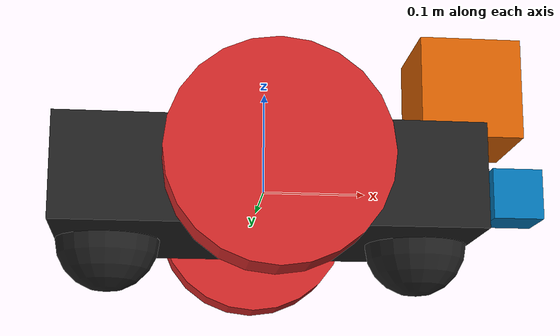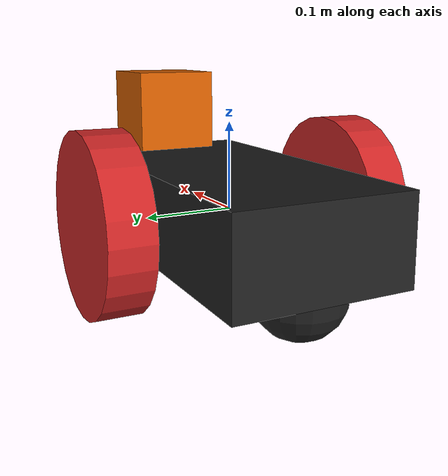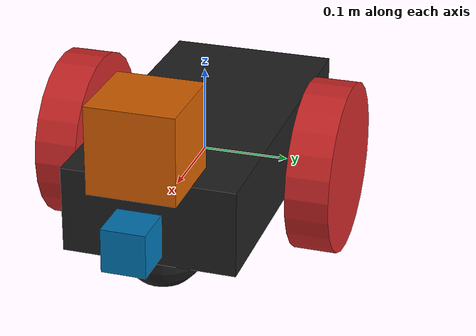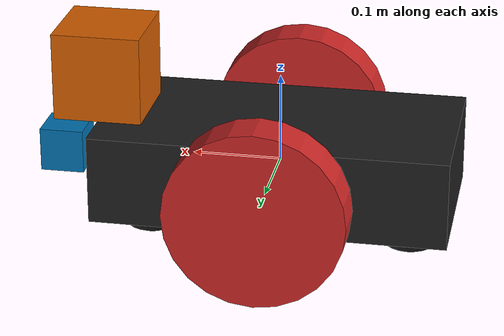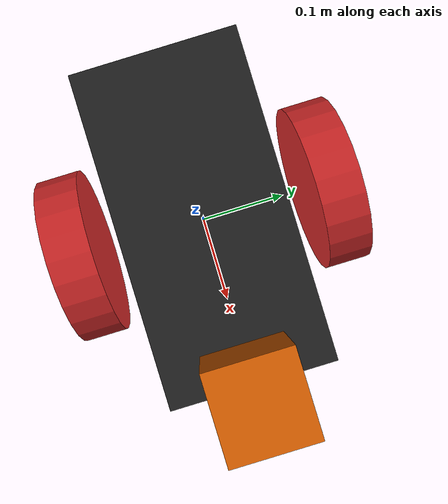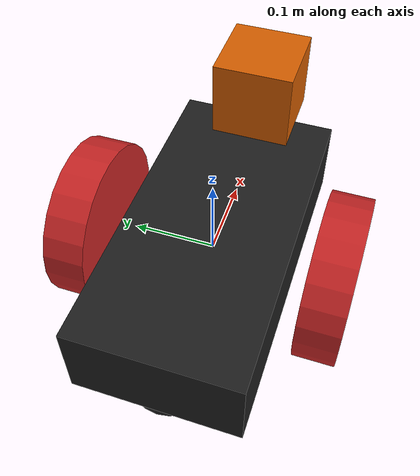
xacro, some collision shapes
<?xml version='1.0'?>

<robot name="my_robot" xmlns:xacro="http://www.ros.org/wiki/xacro">

	<material name="blue">
		<color rgba="0 0 0.8 1"/>
	</material>
	<material name="black">
		<color rgba="0 0 0 1"/>
	</material>
	<material name="red">
		<color rgba="1 0 0 1"/>
	</material>

  <link name="robot_footprint"></link>

	<xacro:include filename="$(find my_robot)/urdf/my_robot.gazebo" />

  <joint name="robot_footprint_joint" type="fixed">
    <origin xyz="0 0 0" rpy="0 0 0" />
    <parent link="robot_footprint"/>
    <child link="chassis" />
  </joint>

	<joint type="continuous" name="left_wheel_hinge">
   	<origin xyz="0 0.15 0" rpy="0 0 0"/>
    <child link="left_wheel"/>
    <parent link="chassis"/>
    <axis xyz="0 1 0" rpy="0 0 0"/>
    <limit effort="10000" velocity="1000"/>
    <dynamics damping="1.0" friction="1.0"/>
  </joint>

	<joint type="continuous" name="right_wheel_hinge">
   	<origin xyz="0 -0.15 0" rpy="0 0 0"/>
    <child link="right_wheel"/>
    <parent link="chassis"/>
    <axis xyz="0 1 0" rpy="0 0 0"/>
    <limit effort="10000" velocity="1000"/>
    <dynamics damping="1.0" friction="1.0"/>
  </joint>

	<joint type="fixed" name="camera_joint">
   	<origin xyz="0.25 0 0" rpy="0 0 0"/>
    <child link="camera"/>
    <parent link="chassis"/>
    <axis xyz="0 1 0" rpy="0 0 0"/>
  </joint>

	<joint type="fixed" name="hokuyo_joint">
   	<origin xyz="0.2 0 0.1" rpy="0 0 0"/>
    <child link="hokuyo"/>
    <parent link="chassis"/>
    <axis xyz="0 1 0" rpy="0 0 0"/>
  </joint>

  <link name='chassis'>
    <pose>0 0 0.1 0 0 0</pose>

    <inertial>
      <mass value="15.0"/>
      <origin xyz="0.0 0 0" rpy=" 0 0 0"/>
      <inertia
          ixx="0.1" ixy="0" ixz="0"
          iyy="0.1" iyz="0"
          izz="0.1"
      />
    </inertial>

    <collision name='collision'>
      <origin xyz="0 0 0" rpy=" 0 0 0"/>
      <geometry>
        <box size=".4 .2 .1"/>
      </geometry>
    </collision>

    <visual name='chassis_visual'>
      <origin xyz="0 0 0" rpy=" 0 0 0"/>
      <geometry>
        <box size=".4 .2 .1"/>
      </geometry>
    </visual>

    <collision name='back_caster_collision'>
      <origin xyz="-0.15 0 -0.05" rpy=" 0 0 0"/>
      <geometry>
        <sphere radius="0.0499"/>
      </geometry>
    </collision>

    <visual name='back_caster_visual'>
      <origin xyz="-0.15 0 -0.05" rpy=" 0 0 0"/>
      <geometry>
        <sphere radius="0.05"/>
      </geometry>
    </visual>

    <collision name='front_caster_collision'>
      <origin xyz="0.15 0 -0.05" rpy=" 0 0 0"/>
      <geometry>
        <sphere radius="0.0499"/>
      </geometry>
    </collision>

    <visual name='front_caster_visual'>
      <origin xyz="0.15 0 -0.05" rpy=" 0 0 0"/>
      <geometry>
        <sphere radius="0.05"/>
      </geometry>
    </visual>

  </link>

  <link name='left_wheel'>
    <pose>0 0 0 0 1.5705 1.5707</pose>

    <inertial>
      <mass value="5.0"/>
      <origin xyz="0.0 0 0" rpy=" 0 0 0"/>
      <inertia
          ixx="0.1" ixy="0" ixz="0"
          iyy="0.1" iyz="0"
          izz="0.1"
      />
    </inertial>

    <visual name='left_wheel_visual'>
      <origin xyz="0 0 0" rpy=" 0 1.5707 1.5707"/>
      <geometry>
        <cylinder length="0.05" radius="0.1"/>
      </geometry>
    </visual>

    <collision name='left_wheel_collision'>
      <origin xyz="0 0 0" rpy=" 0 1.5707 1.5707"/>
      <geometry>
        <cylinder length="0.05" radius="0.1"/>
      </geometry>
    </collision>

  </link>

  <link name='right_wheel'>
    <pose>0 0 0 0 1.5705 1.5707</pose>

    <inertial>
      <mass value="5.0"/>
      <origin xyz="0.0 0 0" rpy=" 0 0 0"/>
      <inertia
          ixx="0.1" ixy="0" ixz="0"
          iyy="0.1" iyz="0"
          izz="0.1"
      />
    </inertial>

    <visual name='right_wheel_visual'>
      <origin xyz="0 0 0" rpy=" 0 1.5707 1.5707"/>
      <geometry>
        <cylinder length="0.05" radius="0.1"/>
      </geometry>
    </visual>

    <collision name='right_wheel_collision'>
      <origin xyz="0 0 0" rpy=" 0 1.5707 1.5707"/>
      <geometry>
        <cylinder length="0.05" radius="0.1"/>
      </geometry>
    </collision>

  </link>

  <link name='camera'>
    <pose>0 0 0 0 0 0</pose>

    <inertial>
      <mass value="0.1"/>
      <origin xyz="0.05 0.05 0.05" rpy=" 0 0 0"/>
      <inertia
          ixx="0.1" ixy="0" ixz="0"
          iyy="1e-6" iyz="0"
          izz="1e-6"
      />
    </inertial>

    <visual name='camera_visual'>
      <origin xyz="0 0 0" rpy=" 0 0 0"/>
      <geometry>
        <box size="0.05 0.05 0.05"/>
      </geometry>
    </visual>

    <collision name='camera_collision'>
      <origin xyz="0 0 0" rpy=" 0 0 0"/>
      <geometry>
        <box size="0.05 0.05 0.05"/>
      </geometry>
    </collision>

  </link>

  <link name='hokuyo'>
    <pose>0 0 0 0 0 0</pose>

    <inertial>
      <mass value="1e-5"/>
      <origin xyz="0.1 0.1 0.05" rpy=" 0 0 0"/>
      <inertia
          ixx="1e-6" ixy="0" ixz="0"
          iyy="1e-6" iyz="0"
          izz="1e-6"
      />
    </inertial>

    <visual name='hokuyo_visual'>
      <origin xyz="0 0 0" rpy=" 0 0 0"/>
      <geometry>
				<mesh filename="package://my_robot/meshes/hokuyo.dae"/>
			</geometry>
    </visual>

    <collision name='hokuyo_collision'>
      <origin xyz="0 0 0" rpy=" 0 0 0"/>
      <geometry>
        <box size="0.1 0.1 0.1"/>
      </geometry>
    </collision>

  </link>

	<gazebo reference="left_wheel">
		<material>Gazebo/Red</material>
	</gazebo>
	<gazebo reference="right_wheel">
		<material>Gazebo/Red</material>
	</gazebo>
	<gazebo reference="chassis">
		<material>Gazebo/Black</material>
	</gazebo>

</robot>
